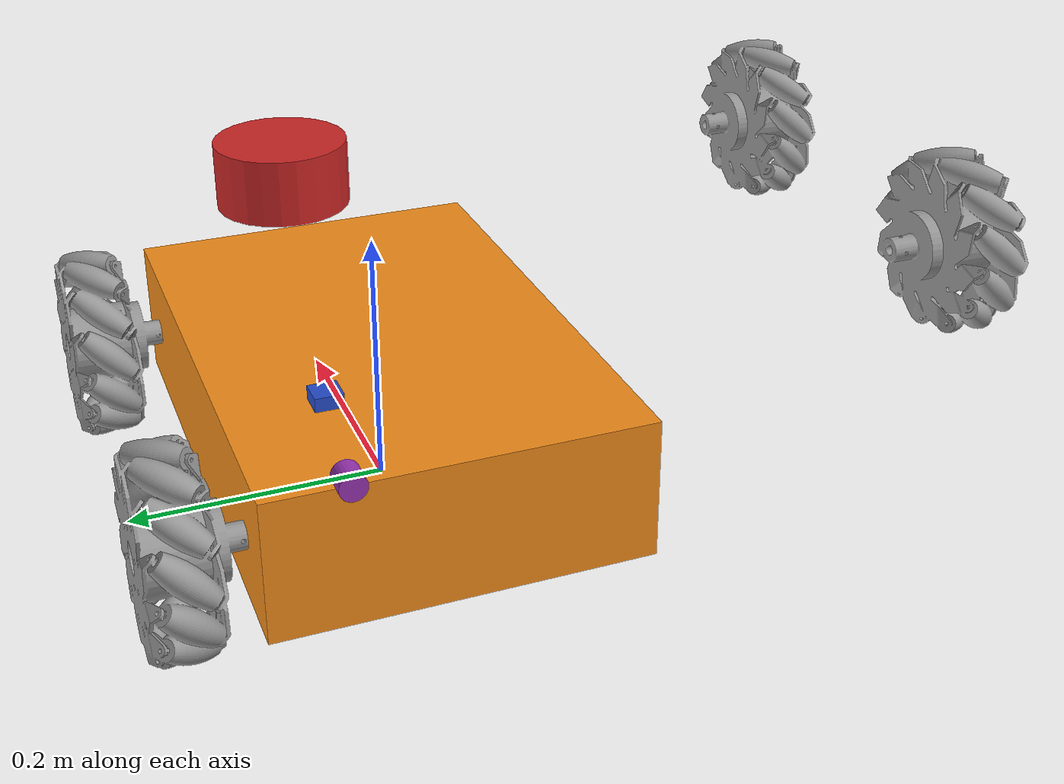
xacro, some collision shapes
<?xml version="1.0"?>
<robot xmlns:xacro="http://www.ros.org/wiki/xacro"  name="roboost_mecanum_robot">

    <xacro:include filename="roboost_materials.xacro"/>

    <!-- Simple Macro to calculate inertia -->
    <xacro:macro name="cylinder_inertia" params="mass radius length">
        <inertia ixx="${mass * (3 * radius * radius + length * length) / 12}"
                 ixy="0.0"
                 ixz="0.0"
                 iyy="${mass * (3 * radius * radius + length * length) / 12}"
                 iyz="0.0"
                 izz="${mass * radius * radius / 2}"/>
    </xacro:macro>

    <xacro:macro name="box_inertia" params="mass x y z">
        <inertia ixx="${mass * (y * y + z * z) / 12}"
                 ixy="0.0"
                 ixz="0.0"
                 iyy="${mass * (x * x + z * z) / 12}"
                 iyz="0.0"
                 izz="${mass * (x * x + y * y) / 12}"/>
    </xacro:macro>

    <!-- TODO: determine values -->
    <xacro:property name="chassis_length" value="0.42"/>
    <xacro:property name="chassis_width" value="0.28"/>
    <xacro:property name="chassis_height" value="0.108"/> <!-- ! Measured from wheel axis to top plate -->
    <xacro:property name="chassis_mass" value="20.0"/>

    <xacro:property name="wheel_radius" value="0.075"/> <!-- ! This is only the wheel redius for the simulated robot. Actual Radius might differ-->
    <xacro:property name="wheel_width" value="0.05"/>
    <xacro:property name="wheel_mass" value="1.0"/>

    <xacro:property name="lidar_height" value="0.0575"/>

    <xacro:property name="wheelbase" value="0.3185"/>
    <xacro:property name="track" value="0.38"/>

    <link name="base_link">
    </link>

    <link name="base_footprint">
    </link>

    <link name="chassis_link">
        <visual>
            <geometry>
                <mesh filename="file://$(find roboost)/meshes/Chassis.STL" scale="0.001 0.001 0.001"/>
            </geometry>

            <origin xyz="0.0 0.0 0.0" rpy="${pi / 2} 0.0 0.0"/>

            <material name="orange"/>
        </visual>
        <collision>
            <geometry>
                <box size="${chassis_length} ${chassis_width} ${chassis_height}"/>
            </geometry>

            <origin xyz="0.0 0.0 0.0" rpy="0.0 0.0 0.0"/>
        </collision>
        <inertial>
            <mass value="${chassis_mass}"/>
            <origin xyz="0.0 0.0 ${chassis_height / 2}" rpy="0.0 0.0 0.0"/>
            <xacro:box_inertia mass="${chassis_mass}" x="${chassis_length}" y="${chassis_width}" z="${chassis_height}"/>
        </inertial>
    </link>

    <gazebo reference="chassis_link">
        <material>Gazebo/Orange</material>
    </gazebo>

    <link name="wheel_front_left_link">
        <visual>
            <geometry>
                <!--cylinder radius="${wheel_radius}" length="${wheel_width}"/-->
                <mesh filename="file://$(find roboost)/meshes/Mecanum-Wheel-Left.STL" scale="0.001 0.001 0.001"/>
            </geometry>

            <origin xyz="0.0 0.0 0.0" rpy="0.0 0.0 0.0"/>

            <material name="grey"/>
        </visual>
        <collision>
            <geometry>
                <cylinder radius="${wheel_radius}" length="${wheel_width}"/>
            </geometry>

            <origin xyz="0.0 0.0 0.0" rpy="0.0 0.0 0.0"/>
        </collision>
        <inertial>
            <mass value="1.0"/>
            <origin xyz="0.0 0.0 0.03" rpy="0.0 0.0 0.0"/>
            <xacro:cylinder_inertia mass="${wheel_mass}" radius="${wheel_radius}" length="${wheel_width}"/>
        </inertial>
    </link>

    <gazebo reference="wheel_front_left_link">
        <material>Gazebo/Grey</material>
        <mu1 value="1.0"/>
        <mu2 value="1.0"/>
        <kp value="1000000.0"/>
        <kd value="1.0"/>
        <fdir1 value="1 0 0"/>
        <turnGravityOff>false</turnGravityOff>
    </gazebo>

    <link name="wheel_front_right_link">
        <visual>
            <geometry>
                <!--cylinder radius="${wheel_radius}" length="${wheel_width}"/-->
                <mesh filename="file://$(find roboost)/meshes/Mecanum-Wheel-Right.STL" scale="0.001 0.001 0.001"/>
            </geometry>

            <origin xyz="0.0 0.0 0.0" rpy="0.0 0.0 0.0"/>

            <material name="grey"/>
        </visual>
        <collision>
            <geometry>
                <cylinder radius="${wheel_radius}" length="${wheel_width}"/>
            </geometry>

            <origin xyz="0.0 0.0 0.0" rpy="0.0 0.0 0.0"/>
        </collision>
        <inertial>
            <mass value="1.0"/>
            <origin xyz="0.0 0.0 0.03" rpy="0.0 0.0 0.0"/>
            <xacro:cylinder_inertia mass="${wheel_mass}" radius="${wheel_radius}" length="${wheel_width}"/>
        </inertial>
    </link>

    <gazebo reference="wheel_front_right_link">
        <material>Gazebo/Grey</material>
        <mu1 value="1.0"/>
        <mu2 value="1.0"/>
        <kp value="1000000.0"/>
        <kd value="1.0"/>
        <fdir1 value="1 0 0"/>
        <turnGravityOff>false</turnGravityOff>
    </gazebo>

    <link name="wheel_back_left_link">
        <visual>
            <geometry>
                <!--cylinder radius="${wheel_radius}" length="${wheel_width}"/-->
                <mesh filename="file://$(find roboost)/meshes/Mecanum-Wheel-Left.STL" scale="0.001 0.001 0.001"/>
            </geometry>

            <origin xyz="0.0 0.0 0.0" rpy="0.0 0.0 0.0"/>

            <material name="grey"/>
        </visual>
        <collision>
            <geometry>
                <cylinder radius="${wheel_radius}" length="${wheel_width}"/>
            </geometry>

            <origin xyz="0.0 0.0 0.0" rpy="0.0 0.0 0.0"/>
        </collision>
        <inertial>
            <mass value="1.0"/>
            <origin xyz="0.0 0.0 0.03" rpy="0.0 0.0 0.0"/>
            <xacro:cylinder_inertia mass="${wheel_mass}" radius="${wheel_radius}" length="${wheel_width}"/>
        </inertial>
    </link>

    <gazebo reference="wheel_back_left_link">
        <material>Gazebo/Grey</material>
        <mu1 value="1.0"/>
        <mu2 value="1.0"/>
        <kp value="1000000.0"/>
        <kd value="1.0"/>
        <fdir1 value="1 0 0"/>
        <turnGravityOff>false</turnGravityOff>
    </gazebo>

    <link name="wheel_back_right_link">
        <visual>
            <geometry>
                <mesh filename="file://$(find roboost)/meshes/Mecanum-Wheel-Right.STL" scale="0.001 0.001 0.001"/>
            </geometry>

            <origin xyz="0.0 0.0 0.0" rpy="0.0 0.0 0.0"/>

            <material name="grey"/>
        </visual>
        <collision>
            <geometry>
                <cylinder radius="${wheel_radius}" length="${wheel_width}"/>
            </geometry>

            <origin xyz="0.0 0.0 0.0" rpy="0.0 0.0 0.0"/>
        </collision>
        <inertial>
            <mass value="1.0"/>
            <origin xyz="0.0 0.0 0.03" rpy="0.0 0.0 0.0"/>
            <xacro:cylinder_inertia mass="${wheel_mass}" radius="${wheel_radius}" length="${wheel_width}"/>
        </inertial>
    </link>

    <gazebo reference="wheel_back_right_link">
        <material>Gazebo/Grey</material>
        <mu1 value="1.0"/>
        <mu2 value="1.0"/>
        <kp value="1000000.0"/>
        <kd value="1.0"/>
        <fdir1 value="1 0 0"/>
        <turnGravityOff>false</turnGravityOff>
    </gazebo>

    <link name="lidar_link">
        <visual>
            <geometry>
                <mesh filename="file://$(find roboost)/meshes/RP-LiDAR.STL" scale="0.001 0.001 0.001"/>
            </geometry>

            <origin xyz="0.0 0.0 0.042" rpy="-${pi / 2} 0.0 ${pi}"/>

            <material name="red"/>
        </visual>
        <collision>
            <geometry>
                <cylinder radius="0.05" length="0.05"/>
            </geometry>

            <origin xyz="0.0 0.0 0.0" rpy="0.0 0.0 0.0"/>
        </collision>
        <inertial>
            <mass value="1.0"/>
            <origin xyz="0.0 0.0 0.0" rpy="0.0 0.0 0.0"/>
            <xacro:cylinder_inertia mass="${wheel_mass}" radius="${wheel_radius}" length="${wheel_width}"/>
        </inertial>
    </link>

    <gazebo reference="lidar_link">
        <material>Gazebo/Red</material>
    </gazebo>

    <link name="camera_link">
        <visual>
            <geometry>
                <cylinder radius="0.01" length="0.02"/>
                <box size="0.02 0.02 0.01"/>
            </geometry>

            <origin xyz="0.0 0.0 0.0" rpy="0.0 0.0 0.0"/>

            <material name="purple"/>
        </visual>
    </link>

    <gazebo reference="camera_link">
        <material>Gazebo/Purple</material>
    </gazebo>

    <link name="imu_link">
        <visual>
            <geometry>
                <box size="0.02 0.02 0.01"/>
            </geometry>

            <origin xyz="0.0 0.0 0.0" rpy="0.0 0.0 0.0"/>

            <material name="blue"/>
        </visual>
    </link>

    <gazebo reference="imu_link">
        <material>Gazebo/Blue</material>
    </gazebo>

    <joint name="chassis_joint" type="fixed">
        <parent link="base_link"/>
        <child link="chassis_link"/>
        <origin xyz="0.0 0.0 ${wheel_radius}" rpy="0.0 0.0 0.0"/>
    </joint>

    <joint name="base_footprint_joint" type="fixed">
        <parent link="base_link"/>
        <child link="base_footprint"/>
        <origin xyz="0.0 0.0 -${wheel_radius}" rpy="0.0 0.0 0.0"/>
    </joint>

    <joint name="wheel_front_left_joint" type="continuous">
        <parent link="chassis_link"/>
        <child link="wheel_front_left_link"/>
        <origin xyz="${wheelbase / 2} ${track / 2} 0.0" rpy="${pi * 3 / 2} 0.0 0.0"/>
        <axis xyz="0.0 0.0 1.0"/>
        <limit effort="100.0" velocity="100.0"/>
        <joint_properties damping="0.0" friction="0.0"/>
    </joint>

    <joint name="wheel_front_right_joint" type="continuous">
        <parent link="chassis_link"/>
        <child link="wheel_front_right_link"/>
        <origin xyz="${wheelbase / 2} -${track / 2} 0.0" rpy="${pi / 2} 0.0 0.0"/>
        <axis xyz="0.0 0.0 1.0"/>
        <limit effort="100.0" velocity="100.0"/>
        <joint_properties damping="0.0" friction="0.0"/>
    </joint>

    <joint name="wheel_back_left_joint" type="continuous">
        <parent link="chassis_link"/>
        <child link="wheel_back_left_link"/>
        <origin xyz="-${wheelbase / 2} ${track / 2} 0.0" rpy="${pi * 3 / 2} 0.0 0.0"/>
        <axis xyz="0.0 0.0 1.0"/>
        <limit effort="100.0" velocity="100.0"/>
        <joint_properties damping="0.0" friction="0.0"/>
    </joint>

    <joint name="wheel_back_right_joint" type="continuous">
        <parent link="chassis_link"/>
        <child link="wheel_back_right_link"/>
        <origin xyz="-${wheelbase / 2} -${track / 2} 0.0" rpy="${pi / 2} 0.0 0.0"/>
        <axis xyz="0.0 0.0 1.0"/>
        <limit effort="100.0" velocity="100.0"/>
        <joint_properties damping="0.0" friction="0.0"/>
    </joint>

    <joint name="lidar_joint" type="fixed">
        <parent link="chassis_link"/>
        <child link="lidar_link"/>
        <origin xyz="0.062 0.05 ${chassis_height + lidar_height}" rpy="${pi} 0.0 ${pi * 3/ 2}"/>
    </joint>

    <joint name="camera_joint" type="fixed">
        <parent link="chassis_link"/>
        <child link="camera_link"/>
        <origin xyz="${-chassis_length / 2} 0.08 ${chassis_height -0.05}" rpy="0.0 ${pi * 3 / 2} 0.0"/>
    </joint>

    <joint name="imu_joint" type="fixed">
        <parent link="chassis_link"/>
        <child link="imu_link"/>
        <origin xyz="${-chassis_length / 2 + 0.05} 0.08 ${chassis_height -0.015}" rpy="0.0 0.0 0.0"/>
    </joint>

    <transmission name="transmission_front_left">
        <type>transmission_interface/SimpleTransmission</type>
        <joint name="wheel_front_left_joint">
            <hardwareInterface>hardware_interface/EffortJointInterface</hardwareInterface>
        </joint>
        <actuator name="front_left_motor">
            <hardwareInterface>hardware_interface/EffortJointInterface</hardwareInterface>
            <mechanicalReduction>1</mechanicalReduction>
        </actuator>
    </transmission>

    <transmission name="transmission_front_right">
        <type>transmission_interface/SimpleTransmission</type>
        <joint name="wheel_front_right_joint">
            <hardwareInterface>hardware_interface/EffortJointInterface</hardwareInterface>
        </joint>
        <actuator name="front_right_motor">
            <hardwareInterface>hardware_interface/EffortJointInterface</hardwareInterface>
            <mechanicalReduction>1</mechanicalReduction>
        </actuator>
    </transmission>

    <transmission name="transmission_back_left">
        <type>transmission_interface/SimpleTransmission</type>
        <joint name="wheel_back_left_joint">
            <hardwareInterface>hardware_interface/EffortJointInterface</hardwareInterface>
        </joint>
        <actuator name="back_left_motor">
            <hardwareInterface>hardware_interface/EffortJointInterface</hardwareInterface>
            <mechanicalReduction>1</mechanicalReduction>
        </actuator>
    </transmission>

    <transmission name="transmission_back_right">
        <type>transmission_interface/SimpleTransmission</type>
        <joint name="wheel_back_right_joint">
            <hardwareInterface>hardware_interface/EffortJointInterface</hardwareInterface>
        </joint>
        <actuator name="back_right_motor">
            <hardwareInterface>hardware_interface/EffortJointInterface</hardwareInterface>
            <mechanicalReduction>1</mechanicalReduction>
        </actuator>
    </transmission>

    <xacro:include filename="gazebo_control.xacro"/>
</robot>
